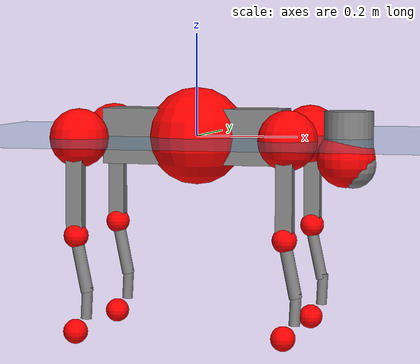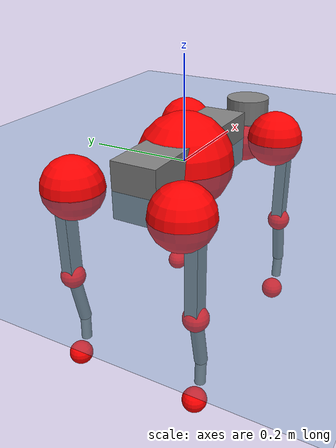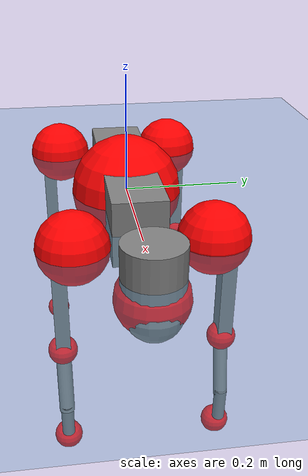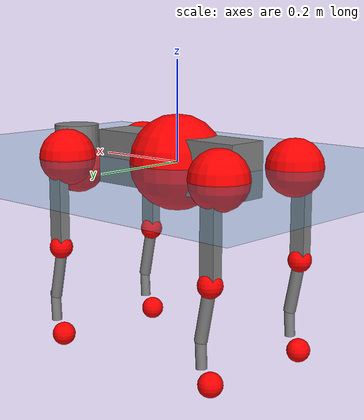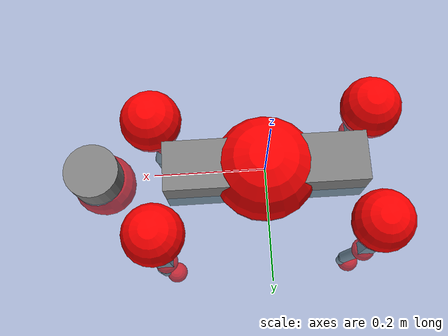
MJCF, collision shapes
<mujoco model="go2">
  <compiler angle="radian" assetdir="assets" balanceinertia="true" inertiafromgeom="false"/>

  <option timestep="0.005" density="1.2" viscosity="2e-05"/>

  <size nkey="1"/>

  <visual>
    <quality shadowsize="8192"/>
    <map shadowclip="0.5"/>
  </visual>

  <default>
    <default class="/">
      <geom contype="0" conaffinity="0" group="1" solref="-1000 -80"/>
      <site size="0.01 0.005 0.005" group="5"/>
      <general forcelimited="true" biastype="affine" gainprm="20" biasprm="0 -20 -0.5"/>
      <default class="go2">
        <joint armature="0.01" damping="0.01" frictionloss="0.2"/>
        <geom condim="1" margin="0.001"/>
        <default class="visual">
          <geom type="mesh" group="2"/>
        </default>
        <default class="collision">
          <geom group="3"/>
          <default class="foot">
            <geom size="0.022 0 0" condim="6" priority="1" friction="0.8 0.02 0.01" solimp="0.015 1 0.022"/>
          </default>
        </default>
        <default class="reward_collision_sphere">
          <geom group="5" rgba="1 0 0 1"/>
        </default>
      </default>
    </default>
  </default>

  <asset>
    <texture type="skybox" colorspace="auto" name="//unnamed_texture_0" builtin="gradient" rgb1="0.95 0.95 0.95" rgb2="0.95 0.95 0.95" width="100" height="600"/>
    <texture type="2d" colorspace="auto" name="texplane" builtin="checker" rgb1="0.345 0.575 0.748" rgb2="0.345 0.575 0.748" markrgb="1 1 1" width="512" height="512"/>
    <material name="MatPlane" class="/" texture="texplane" texuniform="true" texrepeat="2 2" specular="0.9"/>
    <material name="metal" class="/" rgba="0.9 0.95 0.95 1"/>
    <material name="black" class="/" rgba="0 0 0 1"/>
    <material name="white" class="/"/>
    <material name="gray" class="/" rgba="0.671705 0.692426 0.77427 1"/>
    <mesh name="base_0" class="/" file="base_0.obj"/>
    <mesh name="base_1" class="/" file="base_1.obj"/>
    <mesh name="base_2" class="/" file="base_2.obj"/>
    <mesh name="base_3" class="/" file="base_3.obj"/>
    <mesh name="base_4" class="/" file="base_4.obj"/>
    <mesh name="hip_0" class="/" file="hip_0.obj"/>
    <mesh name="hip_1" class="/" file="hip_1.obj"/>
    <mesh name="thigh_0" class="/" file="thigh_0.obj"/>
    <mesh name="thigh_1" class="/" file="thigh_1.obj"/>
    <mesh name="thigh_mirror_0" class="/" file="thigh_mirror_0.obj"/>
    <mesh name="thigh_mirror_1" class="/" file="thigh_mirror_1.obj"/>
    <mesh name="calf_0" class="/" file="calf_0.obj"/>
    <mesh name="calf_1" class="/" file="calf_1.obj"/>
    <mesh name="calf_mirror_0" class="/" file="calf_mirror_0.obj"/>
    <mesh name="calf_mirror_1" class="/" file="calf_mirror_1.obj"/>
    <mesh name="foot" class="/" file="foot.obj"/>
  </asset>

  <worldbody>
    <geom name="floor" class="/" size="100 100 0.125" type="plane" group="0" material="MatPlane"/>
    <light name="toplight_shadow" class="/" pos="0 0 5" dir="0.0990148 0.0990148 -0.990148" type="directional" ambient="0.04 0.04 0.04" diffuse="0.55 0.55 0.55" specular="0.12 0.12 0.12"/>
    <light name="toplight_fill" class="/" pos="0 0 5" dir="0.0990148 0.0990148 -0.990148" type="directional" castshadow="false" ambient="0.04 0.04 0.04" diffuse="0.3 0.3 0.3" specular="0.08 0.08 0.08"/>
    <body name="trunk" childclass="go2" pos="0.000736498 -0.00074194 7.9869e-05" quat="1 -3.23999e-05 9.09213e-05 1.31477e-05">
      <inertial pos="0.0222905 -0.000225115 -0.0047209" quat="0.00279825 0.712052 -0.00460502 0.702106" mass="5.89112" diaginertia="0.144169 0.0658294 0.012439"/>
      <joint name="//unnamed_joint_0" type="free" armature="0" damping="0" frictionloss="0"/>
      <geom name="//unnamed_geom_1" class="visual" material="black" mesh="base_0"/>
      <geom name="//unnamed_geom_2" class="visual" material="black" mesh="base_1"/>
      <geom name="//unnamed_geom_3" class="visual" material="black" mesh="base_2"/>
      <geom name="//unnamed_geom_4" class="visual" material="white" mesh="base_3"/>
      <geom name="//unnamed_geom_5" class="visual" material="gray" mesh="base_4"/>
      <geom name="trunk_1" class="collision" size="0.17907 0.0445056 0.0542636" type="box"/>
      <geom name="trunk_2" class="collision" size="0.0475996 0.0428397" pos="0.301773 0 0.00872853" type="cylinder"/>
      <geom name="trunk_3" class="collision" size="0.0447436" pos="0.310244 0 -0.0523712"/>
      <geom name="//unnamed_geom_9" class="reward_collision_sphere" size="0.0951992"/>
      <geom name="//unnamed_geom_10" class="reward_collision_sphere" size="0.0571195" pos="0.296479 0 -0.0392784"/>
      <site name="imu" pos="-0.0272297 -0.00241862 0.0302119" size="0.00951992"/>
      <camera name="track" pos="0 -1.84854 0" quat="0.707107 0.707107 0 0" mode="trackcom"/>
      <camera name="ego_camera" pos="0.330362 0 0.0392784" quat="-0.5 -0.5 0.5 0.5"/>
      <body name="FL_hip" pos="0.204527 0.0440719 0.0012458" quat="1 0.000191313 -6.4702e-05 6.57726e-05">
        <inertial pos="-0.00658031 0.00270381 -8.06091e-05" quat="0.497239 0.499746 0.504999 0.497979" mass="0.584718" diaginertia="0.00117549 0.000405515 0.000242915"/>
        <joint name="FL_hip_joint" pos="0 0 0" axis="0.999916 -0.01116 -0.00658778" range="-1.04751 1.04922" armature="0.00888077" damping="0.00735973" frictionloss="0.181228"/>
        <geom name="//unnamed_geom_11" class="visual" material="metal" mesh="hip_0"/>
        <geom name="//unnamed_geom_12" class="visual" material="gray" mesh="hip_1"/>
        <geom name="//unnamed_geom_13" class="collision" size="0.0437917 0.0190398" pos="0 0.0739416 0" quat="0.707107 0.707107 0 0" type="cylinder"/>
        <geom name="//unnamed_geom_14" class="reward_collision_sphere" size="0.0571195" pos="0 0.0646989 0"/>
        <body name="FL_thigh" pos="0.000113477 0.0888891 0.00130248" quat="1 0.000303577 -0.000219885 -0.000364684">
          <inertial pos="-0.00430568 -0.0205554 -0.0298718" quat="0.828899 0.0887726 -0.0225649 0.551849" mass="0.996351" diaginertia="0.00794231 0.00396696 0.000449409"/>
          <joint name="FL_thigh_joint" pos="0 0 0" axis="0.00208493 0.999993 0.0030597" range="-1.58686 3.49456" armature="0.00965141" damping="0.00909398" frictionloss="0.198943"/>
          <geom name="//unnamed_geom_15" class="visual" material="metal" mesh="thigh_0"/>
          <geom name="//unnamed_geom_16" class="visual" material="gray" mesh="thigh_1"/>
          <geom name="//unnamed_geom_17" class="collision" size="0.101387 0.0116619 0.0161839" pos="0 0 -0.0929589" quat="0.707107 0 0.707107 0" type="box"/>
          <body name="FL_calf" pos="-0.000407686 -0.00192581 -0.18609" quat="1 0.000156686 0.000167861 -3.91493e-05">
            <inertial pos="0.00586353 -0.000940547 -0.122811" quat="0.709507 -0.00205234 -0.00836286 0.704646" mass="0.203915" diaginertia="0.00196664 0.000978397 2.65226e-05"/>
            <joint name="FL_calf_joint" pos="0 0 0" axis="0.00728163 0.999966 0.00393957" stiffness="0.00249496" range="-2.72563 -0.846732" armature="0.00963246" damping="0.00596871" frictionloss="0.192278"/>
            <geom name="//unnamed_geom_18" class="visual" material="gray" mesh="calf_0"/>
            <geom name="//unnamed_geom_19" class="visual" material="black" mesh="calf_1"/>
            <geom name="FL_calf0" class="collision" size="0.0114239 0.0571195" pos="0.00847083 0 -0.0523712" quat="0.994493 0 -0.104807 0" type="cylinder"/>
            <geom name="//unnamed_geom_21" class="collision" size="0.0104719 0.0309398" pos="0.0211771 0 -0.129182" quat="0.999688 0 0.0249974 0" type="cylinder"/>
            <geom name="//unnamed_geom_22" class="visual" pos="0 0 -0.185918" quat="1 0 0 0" material="black" mesh="foot"/>
            <geom name="FL_foot" class="foot" size="0.0174237" pos="-0.00211771 0 -0.185918"/>
            <geom name="//unnamed_geom_24" class="reward_collision_sphere" size="0.0237998"/>
            <geom name="//unnamed_geom_25" class="reward_collision_sphere" size="0.0237998" pos="-0.00211771 0 -0.185918"/>
            <site name="FL_foot" class="foot" pos="-0.00211771 0 -0.185918" size="0.00951992"/>
          </body>
        </body>
      </body>
      <body name="FR_hip" pos="0.204167 -0.0408381 -0.000664439" quat="1 0.000148764 7.36769e-05 1.2442e-05">
        <inertial pos="-0.00398739 -0.00184046 -0.001952" quat="0.49712 0.503369 0.502515 0.496961" mass="0.597807" diaginertia="0.00119819 0.000411585 0.000247168"/>
        <joint name="FR_hip_joint" pos="0 0 0" axis="1 -0.000893481 -6.56199e-05" stiffness="0.00678006" range="-1.07098 1.05382" armature="0.00957624" damping="0.0133898" frictionloss="0.187509"/>
        <geom name="//unnamed_geom_26" class="visual" pos="0 4.47924e-10 1.92124e-08" quat="4.63268e-05 1 0 0" material="metal" mesh="hip_0"/>
        <geom name="//unnamed_geom_27" class="visual" pos="0 7.26139e-10 -4.75196e-08" quat="4.63268e-05 1 0 0" material="gray" mesh="hip_1"/>
        <geom name="//unnamed_geom_28" class="collision" size="0.0437917 0.0190398" pos="0 -0.0739416 0" quat="0.707107 0.707107 0 0" type="cylinder"/>
        <geom name="//unnamed_geom_29" class="reward_collision_sphere" size="0.0571195" pos="0 -0.0646989 0"/>
        <body name="FR_thigh" pos="1.17322e-05 -0.0884237 -0.000352507" quat="1 1.26699e-05 -1.57939e-06 -5.39208e-05">
          <inertial pos="-0.0027214 0.0225592 -0.02858" quat="0.551563 -0.0197943 0.0847156 0.829584" mass="0.988035" diaginertia="0.00785688 0.0039449 0.000442759"/>
          <joint name="FR_thigh_joint" pos="0 0 0" axis="0.00392367 -0.99999 0.00225571" range="-3.50023 1.54996" armature="0.00955949" damping="0.012558" frictionloss="0.194898"/>
          <geom name="//unnamed_geom_30" class="visual" material="metal" mesh="thigh_mirror_0"/>
          <geom name="//unnamed_geom_31" class="visual" material="gray" mesh="thigh_mirror_1"/>
          <geom name="//unnamed_geom_32" class="collision" size="0.101387 0.0116619 0.0161839" pos="0 0 -0.0929589" quat="0.707107 0 0.707107 0" type="box"/>
          <body name="FR_calf" pos="-0.000343989 -0.000846971 -0.185401" quat="1 0.00019047 0.000299527 0.000638679">
            <inertial pos="0.00853887 0.00139479 -0.123501" quat="0.702606 -0.00509346 -0.000566778 0.711561" mass="0.205998" diaginertia="0.00194636 0.000986667 2.72434e-05"/>
            <joint name="FR_calf_joint" pos="0 0 0" axis="-2.66507e-05 -1 -0.000102647" range="0.810606 2.7252" armature="0.0097591" damping="0.0135083" frictionloss="0.196414"/>
            <geom name="//unnamed_geom_33" class="visual" material="gray" mesh="calf_mirror_0"/>
            <geom name="//unnamed_geom_34" class="visual" material="black" mesh="calf_mirror_1"/>
            <geom name="FR_calf0" class="collision" size="0.0123759 0.0571195" pos="0.0105885 0 -0.0523712" quat="0.995004 0 -0.0998334 0" type="cylinder"/>
            <geom name="//unnamed_geom_36" class="collision" size="0.0104719 0.0309398" pos="0.0211771 0 -0.129182" quat="0.999688 0 0.0249974 0" type="cylinder"/>
            <geom name="//unnamed_geom_37" class="visual" pos="0 0 -0.185918" quat="1 0 0 0" material="black" mesh="foot"/>
            <geom name="FR_foot" class="foot" size="0.0219223" pos="-0.00211771 0 -0.185918"/>
            <geom name="//unnamed_geom_39" class="reward_collision_sphere" size="0.0237998"/>
            <geom name="//unnamed_geom_40" class="reward_collision_sphere" size="0.0237998" pos="-0.00211771 0 -0.185918"/>
            <site name="FR_foot" class="foot" pos="-0.00211771 0 -0.185918" size="0.00951992"/>
          </body>
        </body>
      </body>
      <body name="RL_hip" pos="-0.203045 0.043028 0.000645607" quat="1 -0.000161582 -9.3916e-06 -0.000137984">
        <inertial pos="0.0068576 0.000495432 0.000183067" quat="0.504933 0.50003 0.497679 0.497321" mass="0.591015" diaginertia="0.00117427 0.000400978 0.000241369"/>
        <joint name="RL_hip_joint" pos="0 0 0" axis="-0.999784 -0.0049687 -0.020179" range="-1.05818 1.03399" armature="0.00946953" damping="0.0100206" frictionloss="0.195257"/>
        <geom name="//unnamed_geom_41" class="visual" pos="-1.62036e-09 0 -3.17627e-07" quat="4.63268e-05 0 1 0" material="metal" mesh="hip_0"/>
        <geom name="//unnamed_geom_42" class="visual" pos="-2.62679e-09 0 -2.8169e-07" quat="4.63268e-05 0 1 0" material="gray" mesh="hip_1"/>
        <geom name="//unnamed_geom_43" class="collision" size="0.0437917 0.0190398" pos="0 0.0739416 0" quat="0.707107 0.707107 0 0" type="cylinder"/>
        <geom name="//unnamed_geom_44" class="reward_collision_sphere" size="0.0571195" pos="0 0.0646989 0"/>
        <body name="RL_thigh" pos="-0.000977474 0.086913 0.000955829" quat="1 -6.8105e-05 -7.79619e-05 -0.000323513">
          <inertial pos="-0.00349858 -0.0190448 -0.0288671" quat="0.829348 0.0847315 -0.0203213 0.551896" mass="0.993985" diaginertia="0.00793958 0.00391243 0.000434083"/>
          <joint name="RL_thigh_joint" pos="0 0 0" axis="-0.00258235 0.999993 -0.00271454" range="-0.534095 4.52003" armature="0.0100164" damping="0.00678834" frictionloss="0.194014"/>
          <geom name="//unnamed_geom_45" class="visual" material="metal" mesh="thigh_0"/>
          <geom name="//unnamed_geom_46" class="visual" material="gray" mesh="thigh_1"/>
          <geom name="//unnamed_geom_47" class="collision" size="0.101387 0.0116619 0.0161839" pos="0 0 -0.0929589" quat="0.707107 0 0.707107 0" type="box"/>
          <body name="RL_calf" pos="0.000642177 -0.00029067 -0.187394" quat="1 -0.000469481 -0.00045902 -0.000319691">
            <inertial pos="0.00679343 -0.000566064 -0.121465" quat="0.711591 0.00238268 -0.0089976 0.702532" mass="0.206405" diaginertia="0.00199438 0.00100136 2.69117e-05"/>
            <joint name="RL_calf_joint" pos="0 0 0" axis="0.000499559 1 0.00080275" stiffness="0.00442697" range="-2.71491 -0.824182" armature="0.00966934" damping="0.0012137" frictionloss="0.190866"/>
            <geom name="//unnamed_geom_48" class="visual" material="gray" mesh="calf_0"/>
            <geom name="//unnamed_geom_49" class="visual" material="black" mesh="calf_1"/>
            <geom name="RL_calf0" class="collision" size="0.0123759 0.0571195" pos="0.0105885 0 -0.0523712" quat="0.995004 0 -0.0998334 0" type="cylinder"/>
            <geom name="//unnamed_geom_51" class="collision" size="0.0104719 0.0309398" pos="0.0211771 0 -0.129182" quat="0.999688 0 0.0249974 0" type="cylinder"/>
            <geom name="//unnamed_geom_52" class="visual" pos="0 0 -0.185918" quat="1 0 0 0" material="black" mesh="foot"/>
            <geom name="RL_foot" class="foot" size="0.0180984" pos="-0.00211771 0 -0.185918"/>
            <geom name="//unnamed_geom_54" class="reward_collision_sphere" size="0.0237998"/>
            <geom name="//unnamed_geom_55" class="reward_collision_sphere" size="0.0237998" pos="-0.00211771 0 -0.185918"/>
            <site name="RL_foot" class="foot" pos="-0.00211771 0 -0.185918" size="0.00951992"/>
          </body>
        </body>
      </body>
      <body name="RR_hip" pos="-0.206235 -0.0438075 -0.00116889" quat="1 -2.15563e-05 0.000261248 -9.47241e-05">
        <inertial pos="0.00512319 -0.00266368 0.000142141" quat="0.500286 0.491687 0.499162 0.508719" mass="0.58086" diaginertia="0.00115611 0.000396171 0.000239316"/>
        <joint name="RR_hip_joint" pos="0 0 0" axis="-0.999966 0.0034478 0.00742424" stiffness="0.00182361" range="-1.04495 1.04147" armature="0.00968815" damping="0.000980446" frictionloss="0.189767"/>
        <geom name="//unnamed_geom_56" class="visual" pos="1.6157e-09 4.47924e-10 -3.3684e-07" quat="2.14617e-09 4.63268e-05 4.63268e-05 -1" material="metal" mesh="hip_0"/>
        <geom name="//unnamed_geom_57" class="visual" pos="2.63832e-09 7.26139e-10 -2.3417e-07" quat="2.14617e-09 4.63268e-05 4.63268e-05 -1" material="gray" mesh="hip_1"/>
        <geom name="//unnamed_geom_58" class="collision" size="0.0437917 0.0190398" pos="0 -0.0739416 0" quat="0.707107 0.707107 0 0" type="cylinder"/>
        <geom name="//unnamed_geom_59" class="reward_collision_sphere" size="0.0571195" pos="0 -0.0646989 0"/>
        <body name="RR_thigh" pos="0.000221805 -0.0883084 -0.000406939" quat="1 -0.000152958 -0.000182747 3.36065e-05">
          <inertial pos="-0.00349331 0.0207828 -0.0287926" quat="0.548336 -0.0188062 0.0776974 0.832429" mass="0.99323" diaginertia="0.00796332 0.00395958 0.000455522"/>
          <joint name="RR_thigh_joint" pos="0 0 0" axis="-0.000307105 -1 -0.000645432" range="-4.53381 0.513258" armature="0.00966524" damping="0.0137201" frictionloss="0.199643"/>
          <geom name="//unnamed_geom_60" class="visual" material="metal" mesh="thigh_mirror_0"/>
          <geom name="//unnamed_geom_61" class="visual" material="gray" mesh="thigh_mirror_1"/>
          <geom name="//unnamed_geom_62" class="collision" size="0.101387 0.0116619 0.0161839" pos="0 0 -0.0929589" quat="0.707107 0 0.707107 0" type="box"/>
          <body name="RR_calf" pos="0.000872514 -0.00119438 -0.186805" quat="1 -0.000109218 3.29648e-05 1.18294e-05">
            <inertial pos="0.00582377 -0.000863497 -0.122399" quat="0.703698 -0.00398809 0.00237639 0.710484" mass="0.208659" diaginertia="0.00199329 0.000990921 2.68021e-05"/>
            <joint name="RR_calf_joint" pos="0 0 0" axis="-0.00316188 -0.999988 -0.0036101" range="0.848631 2.75016" armature="0.00957485" damping="0.0102441" frictionloss="0.202391"/>
            <geom name="//unnamed_geom_63" class="visual" material="gray" mesh="calf_mirror_0"/>
            <geom name="//unnamed_geom_64" class="visual" material="black" mesh="calf_mirror_1"/>
            <geom name="RR_calf0" class="collision" size="0.0123759 0.0571195" pos="0.0105885 0 -0.0523712" quat="0.995004 0 -0.0998334 0" type="cylinder"/>
            <geom name="//unnamed_geom_66" class="collision" size="0.0104719 0.0309398" pos="0.0211771 0 -0.129182" quat="0.999688 0 0.0249974 0" type="cylinder"/>
            <geom name="//unnamed_geom_67" class="visual" pos="0 0 -0.185918" quat="1 0 0 0" material="black" mesh="foot"/>
            <geom name="RR_foot" class="foot" size="0.0223093" pos="-0.00211771 0 -0.185918"/>
            <geom name="//unnamed_geom_69" class="reward_collision_sphere" size="0.0237998"/>
            <geom name="//unnamed_geom_70" class="reward_collision_sphere" size="0.0237998" pos="-0.00211771 0 -0.185918"/>
            <site name="RR_foot" class="foot" pos="-0.00211771 0 -0.185918" size="0.00951992"/>
          </body>
        </body>
      </body>
    </body>
  </worldbody>

  <contact>
    <pair class="/" geom1="floor" geom2="FL_foot" name="//unnamed_contact_0"/>
    <pair class="/" geom1="floor" geom2="FR_foot" name="//unnamed_contact_1"/>
    <pair class="/" geom1="floor" geom2="RL_foot" name="//unnamed_contact_2"/>
    <pair class="/" geom1="floor" geom2="RR_foot" name="//unnamed_contact_3"/>
  </contact>

  <actuator>
    <general name="FL_hip" class="/" joint="FL_hip_joint" forcerange="-22.4363 22.4363" gainprm="19.0682" biasprm="0 -19.0682 -0.476321"/>
    <general name="FL_thigh" class="/" joint="FL_thigh_joint" forcerange="-22.2856 22.2856" gainprm="19.0682" biasprm="0 -19.0682 -0.476321"/>
    <general name="FL_calf" class="/" joint="FL_calf_joint" forcerange="-41.5217 41.5217" gainprm="19.0682" biasprm="0 -19.0682 -0.476321"/>
    <general name="FR_hip" class="/" joint="FR_hip_joint" forcerange="-22.4535 22.4535" gainprm="19.0682" biasprm="0 -19.0682 -0.476321"/>
    <general name="FR_thigh" class="/" joint="FR_thigh_joint" forcerange="-22.7807 22.7807" gainprm="19.0682" biasprm="0 -19.0682 -0.476321"/>
    <general name="FR_calf" class="/" joint="FR_calf_joint" forcerange="-42.2701 42.2701" gainprm="19.0682" biasprm="0 -19.0682 -0.476321"/>
    <general name="RL_hip" class="/" joint="RL_hip_joint" forcerange="-22.4741 22.4741" gainprm="19.0682" biasprm="0 -19.0682 -0.476321"/>
    <general name="RL_thigh" class="/" joint="RL_thigh_joint" forcerange="-22.0183 22.0183" gainprm="19.0682" biasprm="0 -19.0682 -0.476321"/>
    <general name="RL_calf" class="/" joint="RL_calf_joint" forcerange="-44.7585 44.7585" gainprm="19.0682" biasprm="0 -19.0682 -0.476321"/>
    <general name="RR_hip" class="/" joint="RR_hip_joint" forcerange="-22.7677 22.7677" gainprm="19.0682" biasprm="0 -19.0682 -0.476321"/>
    <general name="RR_thigh" class="/" joint="RR_thigh_joint" forcerange="-22.3604 22.3604" gainprm="19.0682" biasprm="0 -19.0682 -0.476321"/>
    <general name="RR_calf" class="/" joint="RR_calf_joint" forcerange="-40.6526 40.6526" gainprm="19.0682" biasprm="0 -19.0682 -0.476321"/>
  </actuator>

  <sensor>
    <gyro site="imu" name="imu_angular_velocity"/>
    <velocimeter site="imu" name="imu_linear_velocity"/>
    <framelinvel objtype="site" objname="FL_foot" name="FL_foot_global_linear_velocity"/>
    <framelinvel objtype="site" objname="FR_foot" name="FR_foot_global_linear_velocity"/>
    <framelinvel objtype="site" objname="RL_foot" name="RL_foot_global_linear_velocity"/>
    <framelinvel objtype="site" objname="RR_foot" name="RR_foot_global_linear_velocity"/>
  </sensor>

  <keyframe>
    <key name="home" qpos="0 0 0.325 1 0 0 0 0.1 0.8 -1.5 -0.1 -0.8 1.5 -0.1 0.8 -1.5 0.1 -0.8 1.5"/>
  </keyframe>
</mujoco>
